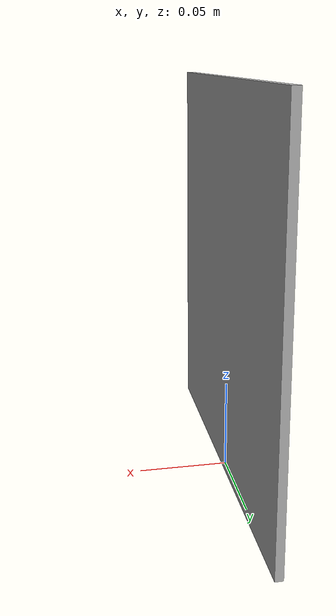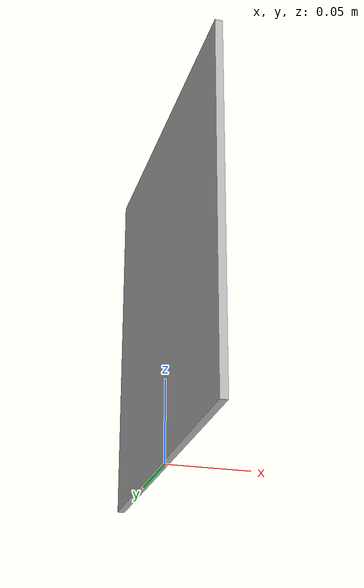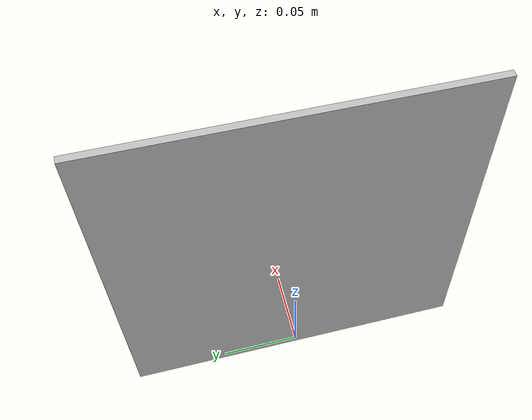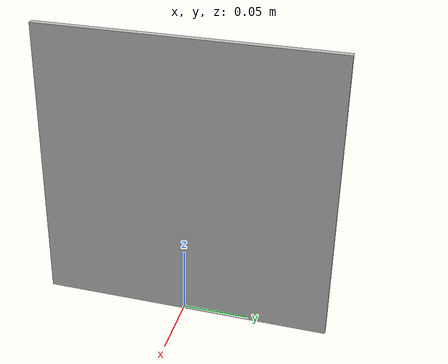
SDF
<?xml version="1.0" ?><sdf version="1.5">
  <model name="aruco2_pau_clase_resized">
    <static>true</static>
    <link name="link">
      <visual name="visual">
        <geometry>
          <mesh>
            <uri>model://aruco2_pau_clase_resized/meshes/aruco2_pau_clase_resized.dae</uri>
          <scale>0.44 0.44 0.44</scale></mesh>
        </geometry>
      </visual>
    </link>
  </model>
</sdf>
